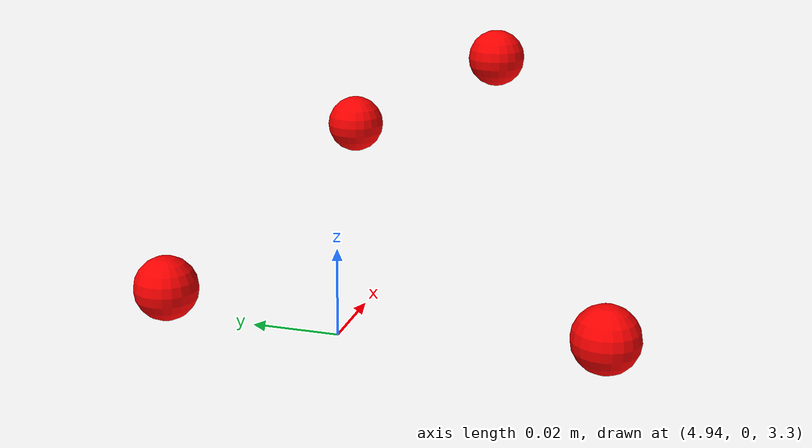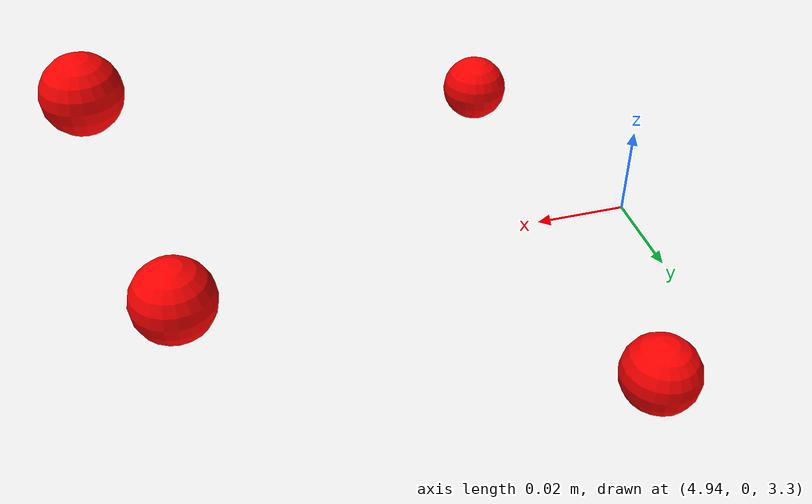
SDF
<?xml version="1.0" ?>
<sdf version="1.4">
  <!-- We use a custom world for the rrbot so that the camera angle is launched correctly -->

  <world name="default">
    <include>
      <uri>model://ground_plane</uri>
    </include>

    <!-- Global light source -->
    <include>
      <uri>model://sun</uri>
    </include>
    <include>
      <uri>model://ir_beacon_test_config</uri>
	<pose>5 0.0 3.3 0 0 0</pose>
    </include>

    <!-- Focus camera on tall pendulum -->
    <gui fullscreen='0'>
      <camera name='user_camera'>
        <pose>7 -2.0 4.5 0.000000 0.275643 2.356190</pose>
        <view_controller>orbit</view_controller>
      </camera>
    </gui>

  </world>
</sdf>

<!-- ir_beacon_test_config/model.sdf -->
<sdf version='1.5'>
  <model name="ir_beacon_test_config">
	<static>true</static>
	<pose>0 0 0 0 0 0</pose>
    <link name='ir_beacon_main'>
	  <pose>0 0 0 0 0 0</pose>
    </link>

	<include>
		<name>ir_beacon_1</name>
		<uri>model://ir_beacon</uri>
		<pose>-0.045 0.049 0.0 0 0 0</pose>
	</include>
	<include>
		<name>ir_beacon_2</name>
		<uri>model://ir_beacon</uri>
		<pose>-0.045 -0.057 0.0 0 0 0</pose>
	</include>
	<include>
		<name>ir_beacon_3</name>
		<uri>model://ir_beacon</uri>
		<pose>0.052 -0.0105 0.042 0 0 0</pose>
	</include>
	<include>
		<name>ir_beacon_4</name>
		<uri>model://ir_beacon</uri>
		<pose>0.042 0.029 0.022 0 0 0</pose>
	</include>

  </model>
</sdf>

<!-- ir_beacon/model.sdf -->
<sdf version='1.5'>
  <model name="ir_beacon">
	<pose>0 0 0 0 0 0</pose>
    <link name='ir_beacon'>
	  <pose>0 0 0 0 0 0</pose>
      <collision name='collision'>
        <geometry>
          <sphere>
            <radius>0.01</radius>
          </sphere>
        </geometry>
      </collision>

      <visual name='beacon'>
		<material>
			<ambient>1 0 0 1</ambient>
			<emissive>1 0 0 1</emissive>
			<diffuse>1 0 0 1</diffuse>
		</material>
	    <geometry>
          	<sphere>
            		<radius>0.008</radius>
          	</sphere>
        </geometry>
      </visual>

	</link>
  </model>
</sdf>
